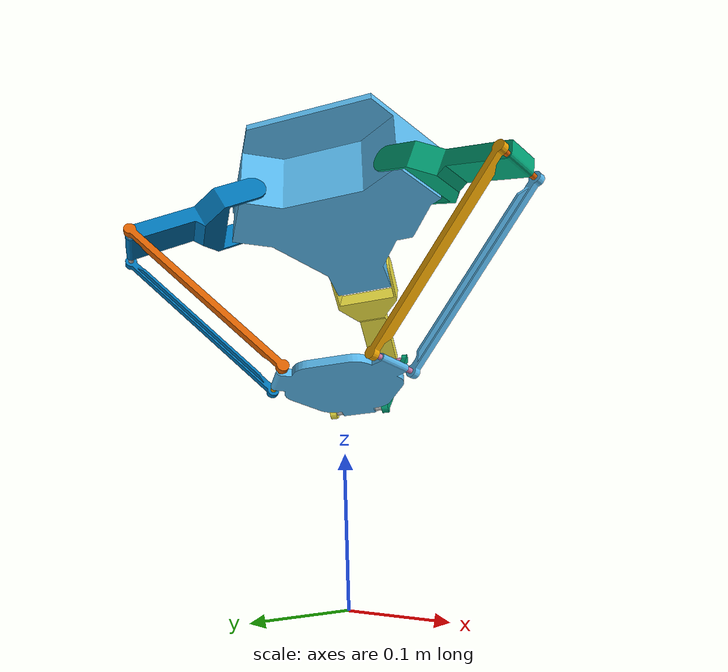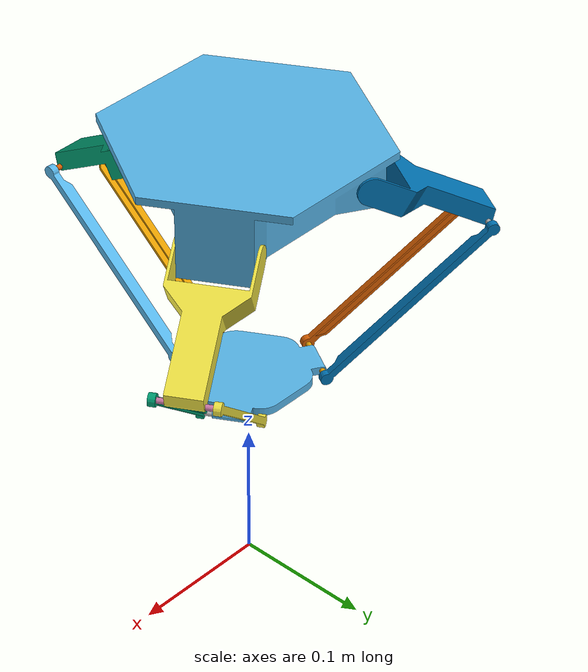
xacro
<?xml version="1.0"?>
<!--rostopic pub -1 /arms_joint_state_controller/command std_msgs/Float64MultiArray "{data:[0,1,-1],layout: {dim:[], data_offset: 1"}}-->
<robot name="delta_robot" xmlns:xacro="http://www.ros.org/wiki/xacro">
  	<xacro:property name="namespace"    	value="delta_robot" />

	<xacro:property name="PI"           	value="3.14159265358"/>
	<xacro:property name="cosThirty"    	value="0.86602540378"/>
	<xacro:property name="sinThirty"    	value="0.50000000000"/>
	<xacro:property name="DegToRad"     	value="0.01745329251"/>

	<xacro:property name="servo_max_force"  value="30"/>				<!-- Max force in N*ms of servos-->
	<xacro:property name="servo_max_speed"  value="0.5"/>				<!-- Max angular velocity in rad/s of servos-->
	<xacro:property name="servo_max_angle"  value="135"/>				<!-- Max angle from origin in degrees of servos-->
	<xacro:property name="servo_min_angle"  value="-135"/>				<!-- Min angle from origin in degrees of servos-->

	<xacro:property name="hip_angle"    	value="120.00000000000"/>	<!-- Starting angle of hip joints which becomes the origin during operation-->
	<xacro:property name="knee_angle"   	value="109.23115703305"/>	<!-- Starting angle of knee joints-->
	<xacro:property name="ankle_angle"  	value="130.76884296694"/>	<!-- Starting angle of ankle joints-->

  	<xacro:property name="base_radius"  	value="0.075" /> 			<!-- Radius between center of base and hip joint in m-->
	<xacro:property name="base_height"  	value="0.300" /> 			<!-- Z height of base with respect to ground in m-->

	<xacro:property name="femur_x"      	value="0.040" /> 			<!-- Width in x direction of upper leg in m-->
	<xacro:property name="femur_y"      	value="0.020" /> 			<!-- Width in y direction of upper leg in m-->
	<xacro:property name="femur_z"      	value="0.100" /> 			<!-- Length of upper leg in m-->
	<xacro:property name="femur_mass"   	value="0.049" /> 			<!-- Mass of upper leg in kg-->

	<xacro:property name="tibia_x"      	value="0.009" /> 			<!-- Width in x direction of lower leg in m-->
	<xacro:property name="tibia_y"      	value="0.009" /> 			<!-- Width in y direction of lower leg in m-->
	<xacro:property name="tibia_z"      	value="0.150" /> 			<!-- Length of lower leg in m-->
	<xacro:property name="tibia_mass"  		value="0.007" /> 			<!-- Mass of lower leg in kg-->

	<xacro:property name="ee_radius"    	value="0.048" /> 			<!-- Radius between center of ee and ankle joint in m-->
	<xacro:property name="ee_z"      		value="0.006" /> 			<!-- Height of ee in m-->
	<xacro:property name="ee_mass"      	value="0.048" /> 			<!-- Mass of ee in kg-->

	<xacro:property name="ankle_mass"   	value="0.005" /> 			<!-- Mass of each ball stud used in ankle joint in kg-->
	<xacro:property name="ankle_radius" 	value="0.002" /> 			<!-- Radius of ankle joint in m-->
	<xacro:property name="ankle_x"  		value="0.040" /> 			<!-- Width of ankle joint in m-->

	<xacro:property name="knee_mass"    	value="0.005" /> 			<!-- Mass of each ball stud used in knee joint in kg-->
	<xacro:property name="knee_radius"  	value="0.002" /> 			<!-- Radius of knee joint in m-->
	<xacro:property name="knee_x"   		value="0.040" /> 			<!-- Width of knee joint in m-->

	<xacro:macro name="inertia_rectangular" params="mass x y z">
		<inertia ixx="${1/12*mass*(y*y+z*z)}" iyz="0.0"
				 iyy="${1/12*mass*(x*x+z*z)}" ixz="0.0"
		    	 izz="${1/12*mass*(x*x+y*y)}" ixy="0.0"/>
	</xacro:macro>

	<gazebo>
		<plugin name="my_plugin" filename="libcontact.so"/>
		<plugin filename="libgazebo_ros_control.so" name="gazebo_ros_control">
		<robotNamespace>/${namespace}</robotNamespace>
     	</plugin>
		<self_collide>true</self_collide>
		<enable_wind>false</enable_wind>
  	</gazebo>

	<link name="world"/>

<!-- Visual Materials -->
	<gazebo reference="base">
		<visual><material><script>
			<uri>file://media/materials/scripts/gazebo.material</uri>
			<name>Gazebo/DarkGrey</name>
		</script></material></visual>
	</gazebo>

	<gazebo reference="femur_1">
		<visual><material><script>
			<uri>file://media/materials/scripts/gazebo.material</uri>
			<name>Gazebo/DarkGrey</name>
		</script></material></visual>
	</gazebo>

	<gazebo reference="femur_2">
		<visual><material><script>
			<uri>file://media/materials/scripts/gazebo.material</uri>
			<name>Gazebo/DarkGrey</name>
		</script></material></visual>
	</gazebo>

	<gazebo reference="femur_3">
		<visual><material><script>
			<uri>file://media/materials/scripts/gazebo.material</uri>
			<name>Gazebo/DarkGrey</name>
		</script></material></visual>
	</gazebo>

	<gazebo reference="tibia_1a">
		<visual><material><script>
			<uri>file://media/materials/scripts/gazebo.material</uri>
			<name>Gazebo/DarkGrey</name>
		</script></material></visual>
	</gazebo>

	<gazebo reference="tibia_1b">
		<visual><material><script>
			<uri>file://media/materials/scripts/gazebo.material</uri>
			<name>Gazebo/DarkGrey</name>
		</script></material></visual>
	</gazebo>

	<gazebo reference="tibia_2a">
		<visual><material><script>
			<uri>file://media/materials/scripts/gazebo.material</uri>
			<name>Gazebo/DarkGrey</name>
		</script></material></visual>
	</gazebo>

	<gazebo reference="tibia_2b">
		<visual><material><script>
			<uri>file://media/materials/scripts/gazebo.material</uri>
			<name>Gazebo/DarkGrey</name>
		</script></material></visual>
	</gazebo>

	<gazebo reference="tibia_3a">
		<visual><material><script>
			<uri>file://media/materials/scripts/gazebo.material</uri>
			<name>Gazebo/DarkGrey</name>
		</script></material></visual>
	</gazebo>

	<gazebo reference="tibia_3b">
		<visual><material><script>
			<uri>file://media/materials/scripts/gazebo.material</uri>
			<name>Gazebo/DarkGrey</name>
		</script></material></visual>
	</gazebo>

	<gazebo reference="ee">
		<visual><material><script>
			<uri>file://media/materials/scripts/gazebo.material</uri>
			<name>Gazebo/DarkGrey</name>
		</script></material></visual>
	</gazebo>

<!-- Fixed Base -->
	<joint name="base_joint" type="fixed">
	  	<origin xyz="0 0 ${base_height}" rpy="0 0 0"/>
	 	<parent link="world"/>
	 	<child link="base"/>
	</joint>
	<link name="base">
		<inertial>
			<origin xyz="0 0 0" rpy="0 0 0"/>
			<mass value="1"/>
			<inertia ixx="0" ixy="0" ixz="0" iyy="0" iyz="0" izz="0" />
		</inertial>
		<visual>
			<origin xyz="0 0 0" rpy="0 0 0"/>
			<geometry>
			<mesh filename="package://delta_robot_support/urdf/meshes/Base_binary.stl" scale="0.001 0.001 0.001" />
			</geometry>
		</visual>
		<collision>
			<origin xyz="0 0 0" rpy="0 0 0"/>
			<geometry>
			<mesh filename="package://delta_robot_support/urdf/meshes/Base_binary.stl" scale="0.001 0.001 0.001" />
			</geometry>
		</collision>
	</link>
<!-- Hips							                                        -->
	<joint name="hip_1" type="revolute">
		<origin xyz="0 -${base_radius} 0" rpy="${hip_angle*DegToRad} 0 0"/>
		<parent link="base"/>
		<child link="femur_1"/>
		<limit effort="${servo_max_force}" velocity="${servo_max_speed}" upper="${hip_angle+servo_max_angle}" lower="${hip_angle+servo_min_angle}"/>
		<axis xyz="1 0 0"/>
		<dynamics damping="0.1"/>
	</joint>

	<joint name="hip_2" type="revolute">
		<origin xyz="${base_radius*cosThirty} ${base_radius*sinThirty} 0" rpy="${hip_angle*DegToRad} 0 ${120*DegToRad}"/>
		<parent link="base"/>
		<child link="femur_2"/>
		<limit effort="${servo_max_force}" velocity="${servo_max_speed}" upper="${hip_angle+servo_max_angle}" lower="${hip_angle+servo_min_angle}"/>
		<axis xyz="1 0 0"/>
		<dynamics damping="0.1"/>
	</joint>

	<joint name="hip_3" type="revolute">
		<origin xyz="-${base_radius*cosThirty} ${base_radius*sinThirty} 0" rpy="${hip_angle*DegToRad} 0 ${240*DegToRad}"/>
		<parent link="base"/>
		<child link="femur_3"/>
		<limit effort="${servo_max_force}" velocity="${servo_max_speed}" upper="${hip_angle+servo_max_angle}" lower="${hip_angle+servo_min_angle}"/>
		<axis xyz="1 0 0"/>
		<dynamics damping="0.1"/>
	</joint>
<!-- Femurs							                                        -->
	<link name="femur_1">
		<inertial>
			<origin xyz="0 0 ${femur_z/2}" rpy="0 0 0"/>
			<mass value="${femur_mass}"/>
			<xacro:inertia_rectangular mass="${femur_mass}" x="${femur_x}" y="${femur_y}" z="${femur_z}" />
		</inertial>
		<visual>
			<origin xyz="0 0 0" rpy="0 0 0"/>
			<geometry>
			<mesh filename="package://delta_robot_support/urdf/meshes/Femur_binary.stl" scale="0.001 0.001 0.001" />
			</geometry>
		</visual>
		<collision>
			<origin xyz="0 0 0" rpy="0 0 0"/>
			<geometry>
			<mesh filename="package://delta_robot_support/urdf/meshes/Femur_binary.stl" scale="0.001 0.001 0.001" />
			</geometry>
		</collision>
	</link>

	<link name="femur_2">
		<inertial>
			<origin xyz="0 0 ${femur_z/2}" rpy="0 0 0"/>
			<mass value="${femur_mass}"/>
			<xacro:inertia_rectangular mass="${femur_mass}" x="${femur_x}" y="${femur_y}" z="${femur_z}" />
		</inertial>
		<visual>
			<origin xyz="0 0 0" rpy="0 0 0"/>
			<geometry>
			<mesh filename="package://delta_robot_support/urdf/meshes/Femur_binary.stl" scale="0.001 0.001 0.001" />
			</geometry>
		</visual>
		<collision>
			<origin xyz="0 0 0" rpy="0 0 0"/>
			<geometry>
			<mesh filename="package://delta_robot_support/urdf/meshes/Femur_binary.stl" scale="0.001 0.001 0.001" />
			</geometry>
		</collision>
	</link>

	<link name="femur_3">
		<inertial>
			<origin xyz="0 0 ${femur_z/2}" rpy="0 0 0"/>
			<mass value="${femur_mass}"/>
			<xacro:inertia_rectangular mass="${femur_mass}" x="${femur_x}" y="${femur_y}" z="${femur_z}" />
		</inertial>
		<visual>
			<origin xyz="0 0 0" rpy="0 0 0"/>
			<geometry>
			<mesh filename="package://delta_robot_support/urdf/meshes/Femur_binary.stl" scale="0.001 0.001 0.001" />
			</geometry>
		</visual>
		<collision>
			<origin xyz="0 0 0" rpy="0 0 0"/>
			<geometry>
			<mesh filename="package://delta_robot_support/urdf/meshes/Femur_binary.stl" scale="0.001 0.001 0.001" />
			</geometry>
		</collision>
	</link>
<!-- Knees							                                        -->
	<joint name="femur_1_to_knee_1" type="continuous">
		<origin xyz="0 0 ${femur_z}" rpy="${knee_angle*DegToRad} 0 0"/>
		<parent link="femur_1"/>
		<child link="knee_1"/>
		<axis xyz="1 0 0"/>
	</joint>
	<link name="knee_1">
		<inertial>
			<origin xyz="0 0 0" rpy="0 0 0"/>
			<mass value="${2*knee_mass}"/>
			<xacro:inertia_rectangular mass="${2*knee_mass}" x="${knee_x}" y="${knee_radius}" z="${knee_radius}" />
		</inertial>
		<visual>
			<origin xyz="0 0 0" rpy="0 ${PI/2} 0"/>
			<geometry>
			<cylinder length="${knee_x}" radius="${knee_radius}" />
			</geometry>
		</visual>
	</link>

	<joint name="femur_2_to_knee_2" type="continuous">
		<origin xyz="0 0 ${femur_z}" rpy="${knee_angle*DegToRad}  0 0"/>
		<parent link="femur_2"/>
		<child link="knee_2"/>
		<axis xyz="1 0 0"/>
	</joint>
	<link name="knee_2">
		<inertial>
			<origin xyz="0 0 0" rpy="0 0 0"/>
			<mass value="${2*knee_mass}"/>
			<xacro:inertia_rectangular mass="${2*knee_mass}" x="${knee_x}" y="${knee_radius}" z="${knee_radius}" />
		</inertial>
		<visual>
			<origin xyz="0 0 0" rpy="0 ${PI/2} 0"/>
			<geometry>
			<cylinder length="${knee_x}" radius="${knee_radius}" />
			</geometry>
		</visual>
	</link>

	<joint name="femur_3_to_knee_3" type="continuous">
		<origin xyz="0 0 ${femur_z}" rpy="${knee_angle*DegToRad}  0 0"/>
		<parent link="femur_3"/>
		<child link="knee_3"/>
		<axis xyz="1 0 0"/>
	</joint>
	<link name="knee_3">
		<inertial>
			<origin xyz="0 0 0" rpy="0 0 0"/>
			<mass value="${2*knee_mass}"/>
			<xacro:inertia_rectangular mass="${2*knee_mass}" x="${knee_x}" y="${knee_radius}" z="${knee_radius}" />
		</inertial>
		<visual>
			<origin xyz="0 0 0" rpy="0 ${PI/2} 0"/>
			<geometry>
			<cylinder length="${knee_x}" radius="${knee_radius}" />
			</geometry>
		</visual>
	</link>
<!-- Tibias 						                                        -->
	<joint name="knee_1_to_tibia_1a" type="continuous">
		<origin xyz="-${knee_x/2} 0 0" rpy="0 0 0"/>
		<parent link="knee_1"/>
		<child link="tibia_1a"/>
		<axis xyz="0 1 0"/>
	</joint>
	<link name="tibia_1a">
		<inertial>
			<origin xyz="0 0 ${tibia_z/2}" rpy="0 0 0"/>
			<mass value="${tibia_mass}"/>
			<xacro:inertia_rectangular mass="${tibia_mass}" x="${tibia_x}" y="${tibia_y}" z="${tibia_z}" />
		</inertial>
		<visual>
			<origin xyz="0 0 0" rpy="0 0 0"/>
			<geometry>
			<mesh filename="package://delta_robot_support/urdf/meshes/Tibia_binary.stl" scale="0.001 0.001 0.001" />
			</geometry>
		</visual>
		<collision>
			<origin xyz="0 0 0" rpy="0 0 0"/>
			<geometry>
			<mesh filename="package://delta_robot_support/urdf/meshes/Tibia_binary.stl" scale="0.001 0.001 0.001" />
			</geometry>
		</collision>
	</link>

	<joint name="knee_1_to_tibia_1b" type="continuous">
		<origin xyz="${knee_x/2} 0 0" rpy="0 0 0"/>
		<parent link="knee_1"/>
		<child link="tibia_1b"/>
		<axis xyz="0 1 0"/>
	</joint>
	<link name="tibia_1b">
		<inertial>
			<origin xyz="0 0 ${tibia_z/2}" rpy="0 0 0"/>
			<mass value="${tibia_mass}"/>
			<xacro:inertia_rectangular mass="${tibia_mass}" x="${tibia_x}" y="${tibia_y}" z="${tibia_z}" />
		</inertial>
		<visual>
			<origin xyz="0 0 0" rpy="0 0 ${PI}"/>
			<geometry>
			<mesh filename="package://delta_robot_support/urdf/meshes/Tibia_binary.stl" scale="0.001 0.001 0.001" />
			</geometry>
		</visual>
		<collision>
			<origin xyz="0 0 0" rpy="0 0 ${PI}"/>
			<geometry>
			<mesh filename="package://delta_robot_support/urdf/meshes/Tibia_binary.stl" scale="0.001 0.001 0.001" />
			</geometry>
		</collision>
	</link>

	<joint name="knee_2_to_tibia_2a" type="continuous">
		<origin xyz="-${knee_x/2} 0 0" rpy="0 0 0"/>
		<parent link="knee_2"/>
		<child link="tibia_2a"/>
		<axis xyz="0 1 0"/>
	</joint>
	<link name="tibia_2a">
		<inertial>
			<origin xyz="0 0 ${tibia_z/2}" rpy="0 0 0"/>
			<mass value="${tibia_mass}"/>
			<xacro:inertia_rectangular mass="${tibia_mass}" x="${tibia_x}" y="${tibia_y}" z="${tibia_z}" />
		</inertial>
		<visual>
			<origin xyz="0 0 0" rpy="0 0 0"/>
			<geometry>
			<mesh filename="package://delta_robot_support/urdf/meshes/Tibia_binary.stl" scale="0.001 0.001 0.001" />
			</geometry>
		</visual>
		<collision>
			<origin xyz="0 0 0" rpy="0 0 0"/>
			<geometry>
			<mesh filename="package://delta_robot_support/urdf/meshes/Tibia_binary.stl" scale="0.001 0.001 0.001" />
			</geometry>
		</collision>
	</link>

	<joint name="knee_2_to_tibia_2b" type="continuous">
		<origin xyz="${knee_x/2} 0 0" rpy="0 0 0"/>
		<parent link="knee_2"/>
		<child link="tibia_2b"/>
		<axis xyz="0 1 0"/>
	</joint>
	<link name="tibia_2b">
		<inertial>
			<origin xyz="0 0 ${tibia_z/2}" rpy="0 0 0"/>
			<mass value="${tibia_mass}"/>
			<xacro:inertia_rectangular mass="${tibia_mass}" x="${tibia_x}" y="${tibia_y}" z="${tibia_z}" />
		</inertial>
		<visual>
			<origin xyz="0 0 0" rpy="0 0 ${PI}"/>
			<geometry>
			<mesh filename="package://delta_robot_support/urdf/meshes/Tibia_binary.stl" scale="0.001 0.001 0.001" />
			</geometry>
		</visual>
		<collision>
			<origin xyz="0 0 0" rpy="0 0 ${PI}"/>
			<geometry>
			<mesh filename="package://delta_robot_support/urdf/meshes/Tibia_binary.stl" scale="0.001 0.001 0.001" />
			</geometry>
		</collision>
	</link>

	<joint name="knee_3_to_tibia_3a" type="continuous">
		<origin xyz="-${knee_x/2} 0 0" rpy="0 0 0"/>
		<parent link="knee_3"/>
		<child link="tibia_3a"/>
		<axis xyz="0 1 0"/>
	</joint>
	<link name="tibia_3a">
		<inertial>
			<origin xyz="0 0 ${tibia_z/2}" rpy="0 0 0"/>
			<mass value="${tibia_mass}"/>
			<xacro:inertia_rectangular mass="${tibia_mass}" x="${tibia_x}" y="${tibia_y}" z="${tibia_z}" />
		</inertial>
		<visual>
			<origin xyz="0 0 0" rpy="0 0 0"/>
			<geometry>
			<mesh filename="package://delta_robot_support/urdf/meshes/Tibia_binary.stl" scale="0.001 0.001 0.001" />
			</geometry>
		</visual>
		<collision>
			<origin xyz="0 0 0" rpy="0 0 0"/>
			<geometry>
			<mesh filename="package://delta_robot_support/urdf/meshes/Tibia_binary.stl" scale="0.001 0.001 0.001" />
			</geometry>
		</collision>
	</link>

	<joint name="knee_3_to_tibia_3b" type="continuous">
		<origin xyz="${knee_x/2} 0 0" rpy="0 0 0"/>
		<parent link="knee_3"/>
		<child link="tibia_3b"/>
		<axis xyz="0 1 0"/>
	</joint>
	<link name="tibia_3b">
		<inertial>
			<origin xyz="0 0 ${tibia_z/2}" rpy="0 0 0"/>
			<mass value="${tibia_mass}"/>
			<xacro:inertia_rectangular mass="${tibia_mass}" x="${tibia_x}" y="${tibia_y}" z="${tibia_z}" />
		</inertial>
		<visual>
			<origin xyz="0 0 0" rpy="0 0 ${PI}"/>
			<geometry>
			<mesh filename="package://delta_robot_support/urdf/meshes/Tibia_binary.stl" scale="0.001 0.001 0.001" />
			</geometry>
		</visual>
		<collision>
			<origin xyz="0 0 0" rpy="0 0 ${PI}"/>
			<geometry>
			<mesh filename="package://delta_robot_support/urdf/meshes/Tibia_binary.stl" scale="0.001 0.001 0.001" />
			</geometry>
		</collision>
	</link>

<!-- Ankles                                                             -->
	<joint name="tibia_1b_to_ankle_1" type="continuous">
        <origin xyz="0 0 ${tibia_z}" rpy="0 0 0"/>
        <parent link="tibia_1b"/>
        <child link="ankle_1"/>
		<axis xyz="0 1 0"/>
	</joint>
	<link name="ankle_1">
		<inertial>
			<origin xyz="-${ankle_x/2} 0 0" rpy="0 0 0"/>
			<mass value="${ankle_mass}"/>
			<xacro:inertia_rectangular mass="${ankle_mass}" x="${ankle_x}" y="${ankle_radius}" z="${ankle_radius}" />
        </inertial>
        <visual>
        	<origin xyz="-${ankle_x/2} 0 0" rpy="0 ${PI/2} 0"/>
        	<geometry>
        	<cylinder length="${ankle_x}" radius="${ankle_radius}" />
        	</geometry>
        </visual>
	</link>

	<joint name="tibia_2b_to_ankle_2" type="continuous">
        <origin xyz="0 0 ${tibia_z}" rpy="0 0 0"/>
        <parent link="tibia_2b"/>
        <child link="ankle_2"/>
		<axis xyz="0 1 0"/>
	</joint>
	<link name="ankle_2">
		<inertial>
			<origin xyz="-${ankle_x/2} 0 0" rpy="0 0 0"/>
			<mass value="${ankle_mass}"/>
			<xacro:inertia_rectangular mass="${ankle_mass}" x="${ankle_x}" y="${ankle_radius}" z="${ankle_radius}" />
        </inertial>
        <visual>
        	<origin xyz="-${ankle_x/2} 0 0" rpy="0 ${PI/2} 0"/>
        	<geometry>
        	<cylinder length="${ankle_x}" radius="${ankle_radius}" />
        	</geometry>
        </visual>
	</link>

	<joint name="tibia_3b_to_ankle_3" type="continuous">
        <origin xyz="0 0 ${tibia_z}" rpy="0 0 0"/>
        <parent link="tibia_3b"/>
        <child link="ankle_3"/>
		<axis xyz="0 1 0"/>
	</joint>
	<link name="ankle_3">
		<inertial>
			<origin xyz="-${ankle_x/2} 0 0" rpy="0 0 0"/>
			<mass value="${ankle_mass}"/>
			<xacro:inertia_rectangular mass="${ankle_mass}" x="${ankle_x}" y="${ankle_radius}" z="${ankle_radius}" />
        </inertial>
        <visual>
        	<origin xyz="-${ankle_x/2} 0 0" rpy="0 ${PI/2} 0"/>
        	<geometry>
        	<cylinder length="${ankle_x}" radius="${ankle_radius}" />
        	</geometry>
        </visual>
	</link>

	<gazebo>
	<joint name='tibia_1a_to_ankle_1' type='revolute'>
        <child>ankle_1</child>
        <parent>tibia_1a</parent>
        <pose> -${ankle_x} 0 0 0 0 0 </pose>
        <axis>
     	   	<xyz>0 1 0</xyz>
           	<limit>
           		<lower>-360</lower>
           		<upper>360</upper>
        	</limit>
            <dynamics>
            	<spring_reference>0</spring_reference>
            	<spring_stiffness>0</spring_stiffness>
      	        <damping>0.000000</damping>
                <friction>0.0000000</friction>
            </dynamics>
            <use_parent_model_frame>1</use_parent_model_frame>
        </axis>
    </joint>

	<joint name='tibia_2a_to_ankle_2' type='revolute'>
        <child>ankle_2</child>
        <parent>tibia_2a</parent>
        <pose> -${ankle_x} 0 0 0 0 0 </pose>
        <axis>
    	    <xyz>0 1 0</xyz>
            <limit>
        	    <lower>-360</lower>
            	<upper>360</upper>
            </limit>
            <dynamics>
            	<spring_reference>0</spring_reference>
                <spring_stiffness>0</spring_stiffness>
      	        <damping>0.000000</damping>
                <friction>0.0000000</friction>
            </dynamics>
            <use_parent_model_frame>1</use_parent_model_frame>
        </axis>
    </joint>

	<joint name='tibia_3a_to_ankle_3' type='revolute'>
        <child>ankle_3</child>
        <parent>tibia_3a</parent>
        <pose> -${ankle_x} 0 0 0 0 0 </pose>
    	<axis>
        	<xyz>0 1 0</xyz>
            <limit>
            	<lower>-360</lower>
                <upper>360</upper>
            </limit>
            <dynamics>
            	<spring_reference>0</spring_reference>
                <spring_stiffness>0</spring_stiffness>
      	        <damping>0.000000</damping>
                <friction>0.0000000</friction>
            </dynamics>
            <use_parent_model_frame>1</use_parent_model_frame>
        </axis>
    </joint>
</gazebo>
<!-- End Effector                                                       -->
    <joint name='ankle_1_to_ee' type='continuous'>
    	<origin xyz="-${ankle_x/2} 0 0" rpy="${ankle_angle*DegToRad} 0 0"/>
        <parent link="ankle_1"/>
        <child link="ee"/>
        <axis xyz="1 0 0"/>
    </joint>

    <link name='ee'>
    	<inertial>
			<origin xyz="0 ${ee_radius} 0 " rpy="0 0 0"/>
			<mass value="${ee_mass}"/>
			<xacro:inertia_rectangular mass="${ee_mass}" x="${ee_radius*5/3}" y="${ee_radius*5/3}" z="${ee_z}" />
    	</inertial>

        <visual>
        	<origin xyz="0 ${ee_radius} 0" rpy="0 0 0"/>
    	    <geometry>
            <mesh filename="package://delta_robot_support/urdf/meshes/EE_binary.stl" scale="0.001 0.001 0.001" />
            </geometry>
        </visual>
		<collision>
        	<origin xyz="0 ${ee_radius} 0" rpy="0 0 0"/>
    	    <geometry>
            <mesh filename="package://delta_robot_support/urdf/meshes/EE_binary.stl" scale="0.001 0.001 0.001" />
            </geometry>
        </collision>
	</link>

	<gazebo>
	<joint name='ee_to_ankle_2' type='revolute'>
		<child>ankle_2</child>
		<parent>ee</parent>
		<pose> -${ankle_x/2} 0 0 ${ankle_angle*DegToRad} 0 0 </pose>
		<axis>
			<xyz>1 0 0</xyz>
			<limit>
            	<lower>-360</lower>
            	<upper>360</upper>
            </limit>
        	<dynamics>
            	<spring_reference>0</spring_reference>
                <spring_stiffness>0</spring_stiffness>
      	    	<damping>0.000000</damping>
            	<friction>0.0000000</friction>
            </dynamics>
            <use_parent_model_frame>0</use_parent_model_frame>
        </axis>
    </joint>

	<joint name='ee_to_ankle_3' type='revolute'>
        <child>ankle_3</child>
        <parent>ee</parent>
        <pose> -${ankle_x/2} 0 0 ${ankle_angle*DegToRad} 0 0 </pose>
        <axis>
            <xyz>1 0 0</xyz>
            <limit>
    	        <lower>-360</lower>
                <upper>360</upper>
            </limit>
            <dynamics>
            	<spring_reference>0</spring_reference>
            	<spring_stiffness>0</spring_stiffness>
      		    <damping>0.000000</damping>
                <friction>0.0000000</friction>
            </dynamics>
            <use_parent_model_frame>0</use_parent_model_frame>
        </axis>
	</joint>
	</gazebo>
<!-- Joins trabsmisions motors for gazebo  -->

	<transmission name="motor1_trans">
    	<type>transmission_interface/SimpleTransmission</type>
      	<actuator name="motor1">
        <mechanicalReduction>1</mechanicalReduction>
      	</actuator>
   		<joint name="hip_1">
        <hardwareInterface>hardware_interface/PositionJointInterface</hardwareInterface>
    	</joint>
	</transmission>

    <transmission name="motor2_trans">
	    <type>transmission_interface/SimpleTransmission</type>
    	<actuator name="motor2">
        <mechanicalReduction>1</mechanicalReduction>
      	</actuator>
     	<joint name="hip_2">
        <hardwareInterface>hardware_interface/PositionJointInterface</hardwareInterface>
    	</joint>
    </transmission>

    <transmission name="motor3_trans">
    	<type>transmission_interface/SimpleTransmission</type>
      	<actuator name="motor3">
        <mechanicalReduction>1</mechanicalReduction>
		</actuator>
    	<joint name="hip_3">
		<hardwareInterface>hardware_interface/PositionJointInterface</hardwareInterface>
    	</joint>
    </transmission>

    <gazebo>
    	<plugin name="gazebo_ros_control" filename="libgazebo_ros_control.so">
        <robotNamespace>/</robotNamespace>
       	</plugin>
    </gazebo>
</robot>
